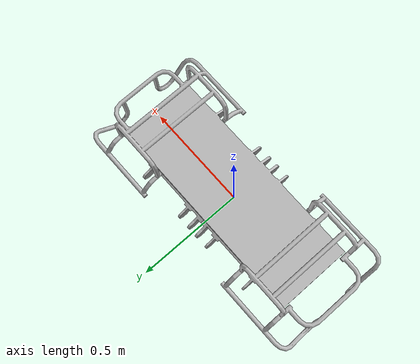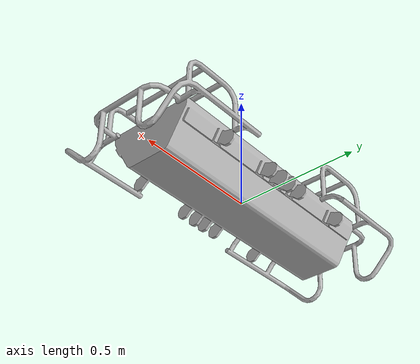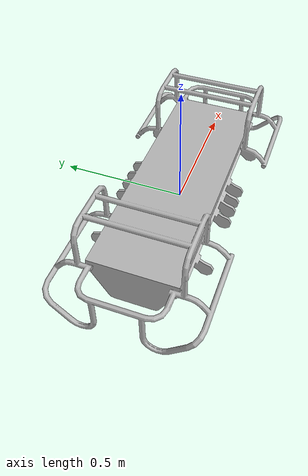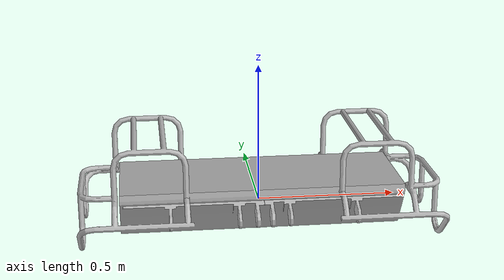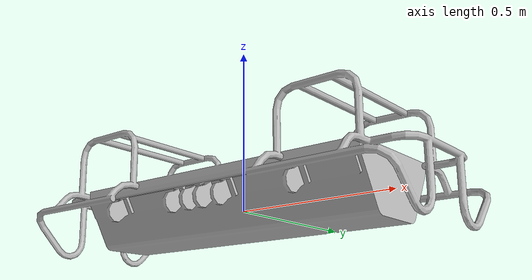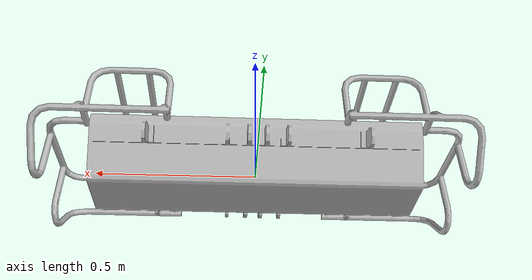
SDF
<?xml version="1.0"?>
<sdf version="1.6">
  <model name="trunk">
    <static>true</static>
    <link name="link">
      <visual name="visual">
        <geometry>
          <mesh>
            <uri>model://trunk/trunk.obj</uri>
          </mesh>
        </geometry>
      </visual>
      <collision name="collision">
        <geometry>
          <mesh>
            <uri>model://trunk/trunk.obj</uri>
          </mesh>
        </geometry>
      </collision>
    </link>
  </model>
</sdf>
